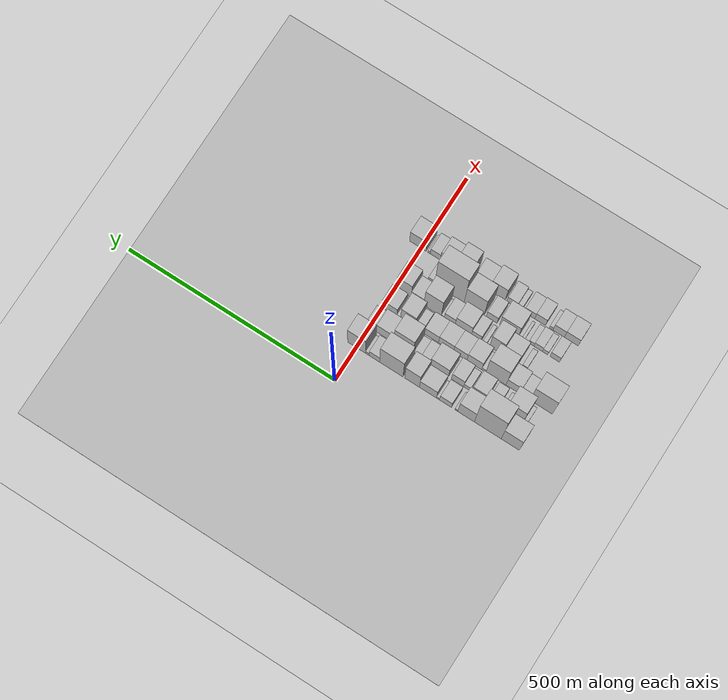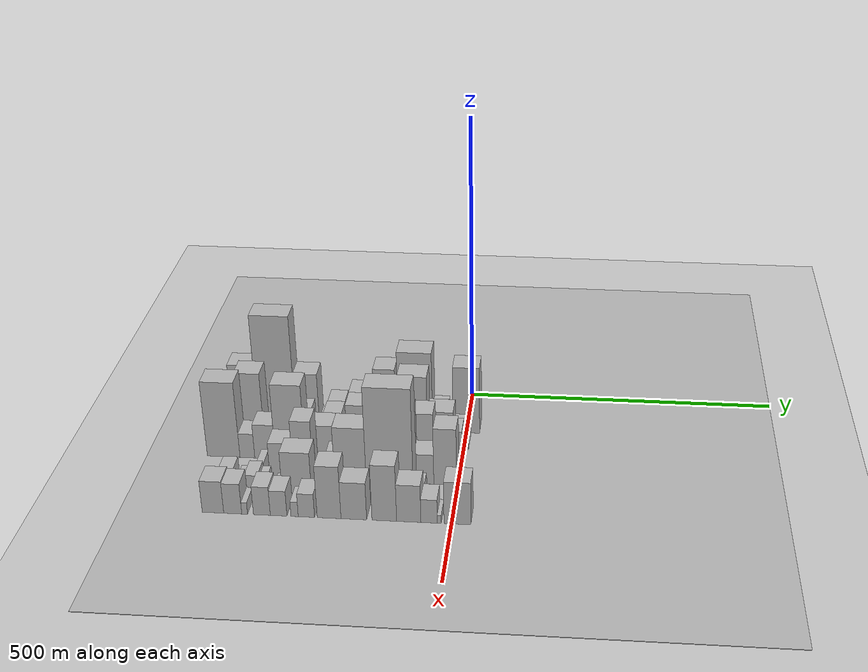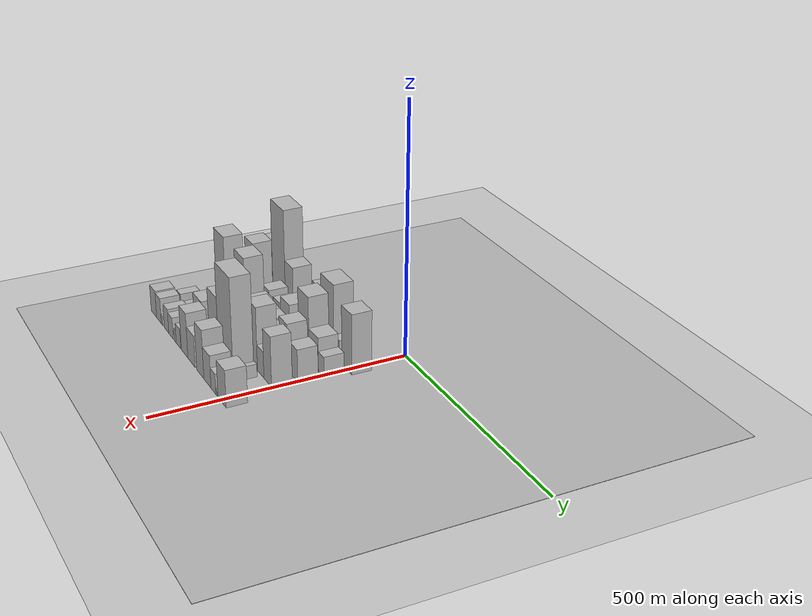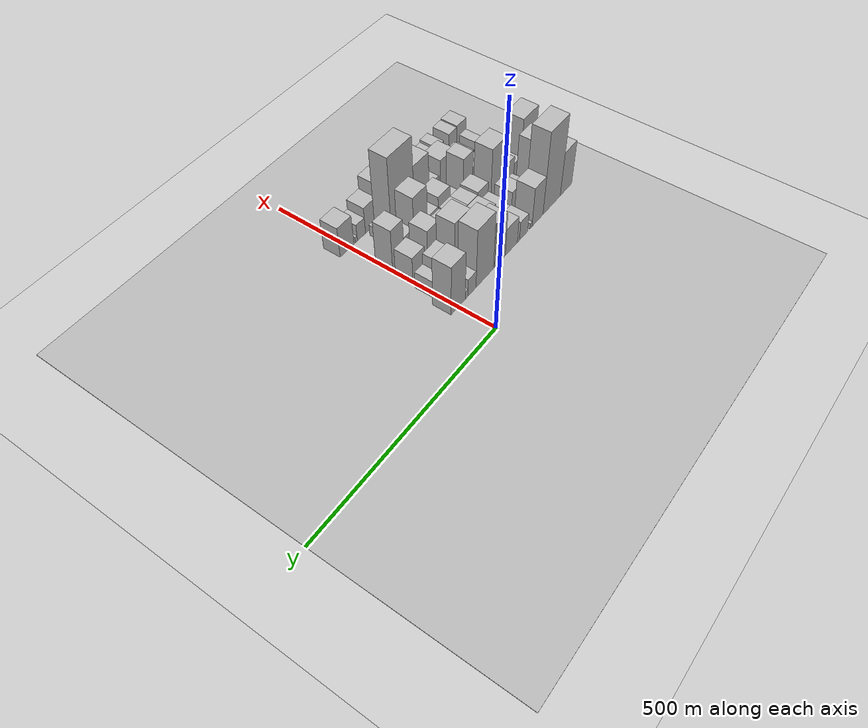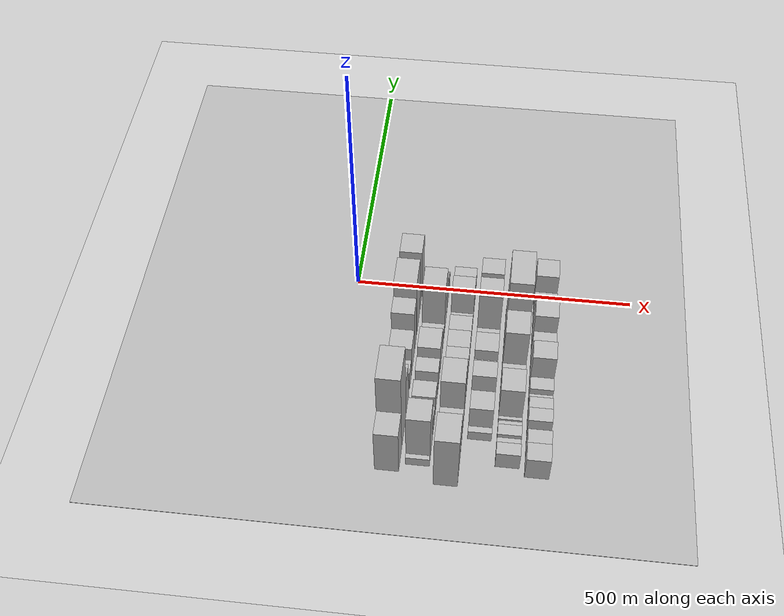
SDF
<sdf version="1.6">
 <world name="default">
  <include><name>ground_plane_1</name><uri>model://HANNAS_ground_plane</uri></include>
  <include>
   <name>ground_plane_2</name>
   <uri>model://HANNAS_ground_plane</uri>
   <pose>100 0 0  0 0 0</pose>
  </include>
  <model name="building_13">
   <static>1</static>
   <pose>100.0000 -365.4669 0 0.000000 0.000000 0.000000</pose>
   <link name="link">
    <pose>0 0 55.50 0 0 0</pose>
    <collision name="collision"><geometry><box><size>40.0000 43.0348 111.0000</size></box></geometry></collision>
    <visual name="visual">
     <cast_shadows>0</cast_shadows>
     <geometry><box><size>40.0000 43.0348 111.0000</size></box></geometry>
     <material>
      <script>
       <uri>model://HANNAS_wall/materials/scripts</uri>
       <uri>model://HANNAS_wall/materials/textures</uri>
       <name>vrc/HANNAS_wall</name>
      </script>
     </material>
    </visual>
   </link>
  </model>
  <model name="building_14">
   <static>1</static>
   <pose>100.0000 -312.3354 0 0.000000 0.000000 0.000000</pose>
   <link name="link">
    <pose>0 0 102.00 0 0 0</pose>
    <collision name="collision"><geometry><box><size>40.0000 63.2282 204.0000</size></box></geometry></collision>
    <visual name="visual">
     <cast_shadows>0</cast_shadows>
     <geometry><box><size>40.0000 63.2282 204.0000</size></box></geometry>
     <material>
      <script>
       <uri>model://HANNAS_wall/materials/scripts</uri>
       <uri>model://HANNAS_wall/materials/textures</uri>
       <name>vrc/HANNAS_wall</name>
      </script>
     </material>
    </visual>
   </link>
  </model>
  <model name="building_15">
   <static>1</static>
   <pose>100.0000 -261.1318 0 0.000000 0.000000 0.000000</pose>
   <link name="link">
    <pose>0 0 49.50 0 0 0</pose>
    <collision name="collision"><geometry><box><size>40.0000 39.1790 99.0000</size></box></geometry></collision>
    <visual name="visual">
     <cast_shadows>0</cast_shadows>
     <geometry><box><size>40.0000 39.1790 99.0000</size></box></geometry>
     <material>
      <script>
       <uri>model://HANNAS_wall/materials/scripts</uri>
       <uri>model://HANNAS_wall/materials/textures</uri>
       <name>vrc/HANNAS_wall</name>
      </script>
     </material>
    </visual>
   </link>
  </model>
  <model name="building_16">
   <static>1</static>
   <pose>100.0000 -238.0258 0 0.000000 0.000000 0.000000</pose>
   <link name="link">
    <pose>0 0 7.50 0 0 0</pose>
    <collision name="collision"><geometry><box><size>40.0000 7.0330 15.0000</size></box></geometry></collision>
    <visual name="visual">
     <cast_shadows>0</cast_shadows>
     <geometry><box><size>40.0000 7.0330 15.0000</size></box></geometry>
     <material>
      <script>
       <uri>model://HANNAS_wall/materials/scripts</uri>
       <uri>model://HANNAS_wall/materials/textures</uri>
       <name>vrc/HANNAS_wall</name>
      </script>
     </material>
    </visual>
   </link>
  </model>
  <model name="building_17">
   <static>1</static>
   <pose>100.0000 -212.2948 0 0.000000 0.000000 0.000000</pose>
   <link name="link">
    <pose>0 0 24.00 0 0 0</pose>
    <collision name="collision"><geometry><box><size>40.0000 28.4289 48.0000</size></box></geometry></collision>
    <visual name="visual">
     <cast_shadows>0</cast_shadows>
     <geometry><box><size>40.0000 28.4289 48.0000</size></box></geometry>
     <material>
      <script>
       <uri>model://HANNAS_wall/materials/scripts</uri>
       <uri>model://HANNAS_wall/materials/textures</uri>
       <name>vrc/HANNAS_wall</name>
      </script>
     </material>
    </visual>
   </link>
  </model>
  <model name="building_18">
   <static>1</static>
   <pose>100.0000 -194.4038 0 0.000000 0.000000 0.000000</pose>
   <link name="link">
    <pose>0 0 7.50 0 0 0</pose>
    <collision name="collision"><geometry><box><size>40.0000 7.3532 15.0000</size></box></geometry></collision>
    <visual name="visual">
     <cast_shadows>0</cast_shadows>
     <geometry><box><size>40.0000 7.3532 15.0000</size></box></geometry>
     <material>
      <script>
       <uri>model://HANNAS_wall/materials/scripts</uri>
       <uri>model://HANNAS_wall/materials/textures</uri>
       <name>vrc/HANNAS_wall</name>
      </script>
     </material>
    </visual>
   </link>
  </model>
  <model name="building_19">
   <static>1</static>
   <pose>100.0000 -170.3524 0 0.000000 0.000000 0.000000</pose>
   <link name="link">
    <pose>0 0 34.50 0 0 0</pose>
    <collision name="collision"><geometry><box><size>40.0000 40.7496 69.0000</size></box></geometry></collision>
    <visual name="visual">
     <cast_shadows>0</cast_shadows>
     <geometry><box><size>40.0000 40.7496 69.0000</size></box></geometry>
     <material>
      <script>
       <uri>model://HANNAS_wall/materials/scripts</uri>
       <uri>model://HANNAS_wall/materials/textures</uri>
       <name>vrc/HANNAS_wall</name>
      </script>
     </material>
    </visual>
   </link>
  </model>
  <model name="building_20">
   <static>1</static>
   <pose>100.0000 -132.4593 0 0.000000 0.000000 0.000000</pose>
   <link name="link">
    <pose>0 0 57.00 0 0 0</pose>
    <collision name="collision"><geometry><box><size>40.0000 35.0364 114.0000</size></box></geometry></collision>
    <visual name="visual">
     <cast_shadows>0</cast_shadows>
     <geometry><box><size>40.0000 35.0364 114.0000</size></box></geometry>
     <material>
      <script>
       <uri>model://HANNAS_wall/materials/scripts</uri>
       <uri>model://HANNAS_wall/materials/textures</uri>
       <name>vrc/HANNAS_wall</name>
      </script>
     </material>
    </visual>
   </link>
  </model>
  <model name="building_21">
   <static>1</static>
   <pose>100.0000 -83.0695 0 0.000000 0.000000 0.000000</pose>
   <link name="link">
    <pose>0 0 73.50 0 0 0</pose>
    <collision name="collision"><geometry><box><size>40.0000 55.7433 147.0000</size></box></geometry></collision>
    <visual name="visual">
     <cast_shadows>0</cast_shadows>
     <geometry><box><size>40.0000 55.7433 147.0000</size></box></geometry>
     <material>
      <script>
       <uri>model://HANNAS_wall/materials/scripts</uri>
       <uri>model://HANNAS_wall/materials/textures</uri>
       <name>vrc/HANNAS_wall</name>
      </script>
     </material>
    </visual>
   </link>
  </model>
  <model name="building_22">
   <static>1</static>
   <pose>100.0000 -42.6258 0 0.000000 0.000000 0.000000</pose>
   <link name="link">
    <pose>0 0 22.50 0 0 0</pose>
    <collision name="collision"><geometry><box><size>40.0000 25.1440 45.0000</size></box></geometry></collision>
    <visual name="visual">
     <cast_shadows>0</cast_shadows>
     <geometry><box><size>40.0000 25.1440 45.0000</size></box></geometry>
     <material>
      <script>
       <uri>model://HANNAS_wall/materials/scripts</uri>
       <uri>model://HANNAS_wall/materials/textures</uri>
       <name>vrc/HANNAS_wall</name>
      </script>
     </material>
    </visual>
   </link>
  </model>
  <model name="building_23">
   <static>1</static>
   <pose>100.0000 -25.8281 0 0.000000 0.000000 0.000000</pose>
   <link name="link">
    <pose>0 0 10.50 0 0 0</pose>
    <collision name="collision"><geometry><box><size>40.0000 8.4514 21.0000</size></box></geometry></collision>
    <visual name="visual">
     <cast_shadows>0</cast_shadows>
     <geometry><box><size>40.0000 8.4514 21.0000</size></box></geometry>
     <material>
      <script>
       <uri>model://HANNAS_wall/materials/scripts</uri>
       <uri>model://HANNAS_wall/materials/textures</uri>
       <name>vrc/HANNAS_wall</name>
      </script>
     </material>
    </visual>
   </link>
  </model>
  <model name="building_24">
   <static>1</static>
   <pose>100.0000 -0.0143 0 0.000000 0.000000 0.000000</pose>
   <link name="link">
    <pose>0 0 61.50 0 0 0</pose>
    <collision name="collision"><geometry><box><size>40.0000 43.1762 123.0000</size></box></geometry></collision>
    <visual name="visual">
     <cast_shadows>0</cast_shadows>
     <geometry><box><size>40.0000 43.1762 123.0000</size></box></geometry>
     <material>
      <script>
       <uri>model://HANNAS_wall/materials/scripts</uri>
       <uri>model://HANNAS_wall/materials/textures</uri>
       <name>vrc/HANNAS_wall</name>
      </script>
     </material>
    </visual>
   </link>
  </model>
  <model name="building_61">
   <static>1</static>
   <pose>149.0000 -367.9124 0 0.000000 0.000000 0.000000</pose>
   <link name="link">
    <pose>0 0 10.50 0 0 0</pose>
    <collision name="collision"><geometry><box><size>40.0000 8.4608 21.0000</size></box></geometry></collision>
    <visual name="visual">
     <cast_shadows>0</cast_shadows>
     <geometry><box><size>40.0000 8.4608 21.0000</size></box></geometry>
     <material>
      <script>
       <uri>model://HANNAS_wall/materials/scripts</uri>
       <uri>model://HANNAS_wall/materials/textures</uri>
       <name>vrc/HANNAS_wall</name>
      </script>
     </material>
    </visual>
   </link>
  </model>
  <model name="building_62">
   <static>1</static>
   <pose>149.0000 -343.1044 0 0.000000 0.000000 0.000000</pose>
   <link name="link">
    <pose>0 0 63.00 0 0 0</pose>
    <collision name="collision"><geometry><box><size>40.0000 41.1552 126.0000</size></box></geometry></collision>
    <visual name="visual">
     <cast_shadows>0</cast_shadows>
     <geometry><box><size>40.0000 41.1552 126.0000</size></box></geometry>
     <material>
      <script>
       <uri>model://HANNAS_wall/materials/scripts</uri>
       <uri>model://HANNAS_wall/materials/textures</uri>
       <name>vrc/HANNAS_wall</name>
      </script>
     </material>
    </visual>
   </link>
  </model>
  <model name="building_63">
   <static>1</static>
   <pose>149.0000 -318.1681 0 0.000000 0.000000 0.000000</pose>
   <link name="link">
    <pose>0 0 10.50 0 0 0</pose>
    <collision name="collision"><geometry><box><size>40.0000 8.7174 21.0000</size></box></geometry></collision>
    <visual name="visual">
     <cast_shadows>0</cast_shadows>
     <geometry><box><size>40.0000 8.7174 21.0000</size></box></geometry>
     <material>
      <script>
       <uri>model://HANNAS_wall/materials/scripts</uri>
       <uri>model://HANNAS_wall/materials/textures</uri>
       <name>vrc/HANNAS_wall</name>
      </script>
     </material>
    </visual>
   </link>
  </model>
  <model name="building_64">
   <static>1</static>
   <pose>149.0000 -293.9728 0 0.000000 0.000000 0.000000</pose>
   <link name="link">
    <pose>0 0 21.00 0 0 0</pose>
    <collision name="collision"><geometry><box><size>40.0000 23.6732 42.0000</size></box></geometry></collision>
    <visual name="visual">
     <cast_shadows>0</cast_shadows>
     <geometry><box><size>40.0000 23.6732 42.0000</size></box></geometry>
     <material>
      <script>
       <uri>model://HANNAS_wall/materials/scripts</uri>
       <uri>model://HANNAS_wall/materials/textures</uri>
       <name>vrc/HANNAS_wall</name>
      </script>
     </material>
    </visual>
   </link>
  </model>
  <model name="building_65">
   <static>1</static>
   <pose>149.0000 -260.7673 0 0.000000 0.000000 0.000000</pose>
   <link name="link">
    <pose>0 0 30.00 0 0 0</pose>
    <collision name="collision"><geometry><box><size>40.0000 32.7379 60.0000</size></box></geometry></collision>
    <visual name="visual">
     <cast_shadows>0</cast_shadows>
     <geometry><box><size>40.0000 32.7379 60.0000</size></box></geometry>
     <material>
      <script>
       <uri>model://HANNAS_wall/materials/scripts</uri>
       <uri>model://HANNAS_wall/materials/textures</uri>
       <name>vrc/HANNAS_wall</name>
      </script>
     </material>
    </visual>
   </link>
  </model>
  <model name="building_66">
   <static>1</static>
   <pose>149.0000 -232.5205 0 0.000000 0.000000 0.000000</pose>
   <link name="link">
    <pose>0 0 15.00 0 0 0</pose>
    <collision name="collision"><geometry><box><size>40.0000 15.7556 30.0000</size></box></geometry></collision>
    <visual name="visual">
     <cast_shadows>0</cast_shadows>
     <geometry><box><size>40.0000 15.7556 30.0000</size></box></geometry>
     <material>
      <script>
       <uri>model://HANNAS_wall/materials/scripts</uri>
       <uri>model://HANNAS_wall/materials/textures</uri>
       <name>vrc/HANNAS_wall</name>
      </script>
     </material>
    </visual>
   </link>
  </model>
  <model name="building_67">
   <static>1</static>
   <pose>149.0000 -209.9047 0 0.000000 0.000000 0.000000</pose>
   <link name="link">
    <pose>0 0 28.50 0 0 0</pose>
    <collision name="collision"><geometry><box><size>40.0000 29.4762 57.0000</size></box></geometry></collision>
    <visual name="visual">
     <cast_shadows>0</cast_shadows>
     <geometry><box><size>40.0000 29.4762 57.0000</size></box></geometry>
     <material>
      <script>
       <uri>model://HANNAS_wall/materials/scripts</uri>
       <uri>model://HANNAS_wall/materials/textures</uri>
       <name>vrc/HANNAS_wall</name>
      </script>
     </material>
    </visual>
   </link>
  </model>
  <model name="building_68">
   <static>1</static>
   <pose>149.0000 -166.5768 0 0.000000 0.000000 0.000000</pose>
   <link name="link">
    <pose>0 0 37.50 0 0 0</pose>
    <collision name="collision"><geometry><box><size>40.0000 43.1795 75.0000</size></box></geometry></collision>
    <visual name="visual">
     <cast_shadows>0</cast_shadows>
     <geometry><box><size>40.0000 43.1795 75.0000</size></box></geometry>
     <material>
      <script>
       <uri>model://HANNAS_wall/materials/scripts</uri>
       <uri>model://HANNAS_wall/materials/textures</uri>
       <name>vrc/HANNAS_wall</name>
      </script>
     </material>
    </visual>
   </link>
  </model>
  <model name="building_69">
   <static>1</static>
   <pose>149.0000 -133.6588 0 0.000000 0.000000 0.000000</pose>
   <link name="link">
    <pose>0 0 21.00 0 0 0</pose>
    <collision name="collision"><geometry><box><size>40.0000 22.6566 42.0000</size></box></geometry></collision>
    <visual name="visual">
     <cast_shadows>0</cast_shadows>
     <geometry><box><size>40.0000 22.6566 42.0000</size></box></geometry>
     <material>
      <script>
       <uri>model://HANNAS_wall/materials/scripts</uri>
       <uri>model://HANNAS_wall/materials/textures</uri>
       <name>vrc/HANNAS_wall</name>
      </script>
     </material>
    </visual>
   </link>
  </model>
  <model name="building_70">
   <static>1</static>
   <pose>149.0000 -113.3416 0 0.000000 0.000000 0.000000</pose>
   <link name="link">
    <pose>0 0 16.50 0 0 0</pose>
    <collision name="collision"><geometry><box><size>40.0000 17.9777 33.0000</size></box></geometry></collision>
    <visual name="visual">
     <cast_shadows>0</cast_shadows>
     <geometry><box><size>40.0000 17.9777 33.0000</size></box></geometry>
     <material>
      <script>
       <uri>model://HANNAS_wall/materials/scripts</uri>
       <uri>model://HANNAS_wall/materials/textures</uri>
       <name>vrc/HANNAS_wall</name>
      </script>
     </material>
    </visual>
   </link>
  </model>
  <model name="building_71">
   <static>1</static>
   <pose>149.0000 -80.9436 0 0.000000 0.000000 0.000000</pose>
   <link name="link">
    <pose>0 0 66.00 0 0 0</pose>
    <collision name="collision"><geometry><box><size>40.0000 46.8184 132.0000</size></box></geometry></collision>
    <visual name="visual">
     <cast_shadows>0</cast_shadows>
     <geometry><box><size>40.0000 46.8184 132.0000</size></box></geometry>
     <material>
      <script>
       <uri>model://HANNAS_wall/materials/scripts</uri>
       <uri>model://HANNAS_wall/materials/textures</uri>
       <name>vrc/HANNAS_wall</name>
      </script>
     </material>
    </visual>
   </link>
  </model>
  <model name="building_72">
   <static>1</static>
   <pose>149.0000 -36.9396 0 0.000000 0.000000 0.000000</pose>
   <link name="link">
    <pose>0 0 34.50 0 0 0</pose>
    <collision name="collision"><geometry><box><size>40.0000 41.1896 69.0000</size></box></geometry></collision>
    <visual name="visual">
     <cast_shadows>0</cast_shadows>
     <geometry><box><size>40.0000 41.1896 69.0000</size></box></geometry>
     <material>
      <script>
       <uri>model://HANNAS_wall/materials/scripts</uri>
       <uri>model://HANNAS_wall/materials/textures</uri>
       <name>vrc/HANNAS_wall</name>
      </script>
     </material>
    </visual>
   </link>
  </model>
  <model name="building_73">
   <static>1</static>
   <pose>149.0000 -4.1953 0 0.000000 0.000000 0.000000</pose>
   <link name="link">
    <pose>0 0 21.00 0 0 0</pose>
    <collision name="collision"><geometry><box><size>40.0000 24.2990 42.0000</size></box></geometry></collision>
    <visual name="visual">
     <cast_shadows>0</cast_shadows>
     <geometry><box><size>40.0000 24.2990 42.0000</size></box></geometry>
     <material>
      <script>
       <uri>model://HANNAS_wall/materials/scripts</uri>
       <uri>model://HANNAS_wall/materials/textures</uri>
       <name>vrc/HANNAS_wall</name>
      </script>
     </material>
    </visual>
   </link>
  </model>
  <model name="building_114">
   <static>1</static>
   <pose>198.0000 -377.8753 0 0.000000 0.000000 0.000000</pose>
   <link name="link">
    <pose>0 0 69.00 0 0 0</pose>
    <collision name="collision"><geometry><box><size>40.0000 52.5424 138.0000</size></box></geometry></collision>
    <visual name="visual">
     <cast_shadows>0</cast_shadows>
     <geometry><box><size>40.0000 52.5424 138.0000</size></box></geometry>
     <material>
      <script>
       <uri>model://HANNAS_wall/materials/scripts</uri>
       <uri>model://HANNAS_wall/materials/textures</uri>
       <name>vrc/HANNAS_wall</name>
      </script>
     </material>
    </visual>
   </link>
  </model>
  <model name="building_115">
   <static>1</static>
   <pose>198.0000 -339.6867 0 0.000000 0.000000 0.000000</pose>
   <link name="link">
    <pose>0 0 22.50 0 0 0</pose>
    <collision name="collision"><geometry><box><size>40.0000 23.8348 45.0000</size></box></geometry></collision>
    <visual name="visual">
     <cast_shadows>0</cast_shadows>
     <geometry><box><size>40.0000 23.8348 45.0000</size></box></geometry>
     <material>
      <script>
       <uri>model://HANNAS_wall/materials/scripts</uri>
       <uri>model://HANNAS_wall/materials/textures</uri>
       <name>vrc/HANNAS_wall</name>
      </script>
     </material>
    </visual>
   </link>
  </model>
  <model name="building_116">
   <static>1</static>
   <pose>198.0000 -311.1882 0 0.000000 0.000000 0.000000</pose>
   <link name="link">
    <pose>0 0 31.50 0 0 0</pose>
    <collision name="collision"><geometry><box><size>40.0000 33.1622 63.0000</size></box></geometry></collision>
    <visual name="visual">
     <cast_shadows>0</cast_shadows>
     <geometry><box><size>40.0000 33.1622 63.0000</size></box></geometry>
     <material>
      <script>
       <uri>model://HANNAS_wall/materials/scripts</uri>
       <uri>model://HANNAS_wall/materials/textures</uri>
       <name>vrc/HANNAS_wall</name>
      </script>
     </material>
    </visual>
   </link>
  </model>
  <model name="building_117">
   <static>1</static>
   <pose>198.0000 -270.6538 0 0.000000 0.000000 0.000000</pose>
   <link name="link">
    <pose>0 0 69.00 0 0 0</pose>
    <collision name="collision"><geometry><box><size>40.0000 47.9067 138.0000</size></box></geometry></collision>
    <visual name="visual">
     <cast_shadows>0</cast_shadows>
     <geometry><box><size>40.0000 47.9067 138.0000</size></box></geometry>
     <material>
      <script>
       <uri>model://HANNAS_wall/materials/scripts</uri>
       <uri>model://HANNAS_wall/materials/textures</uri>
       <name>vrc/HANNAS_wall</name>
      </script>
     </material>
    </visual>
   </link>
  </model>
  <model name="building_118">
   <static>1</static>
   <pose>198.0000 -241.7246 0 0.000000 0.000000 0.000000</pose>
   <link name="link">
    <pose>0 0 10.50 0 0 0</pose>
    <collision name="collision"><geometry><box><size>40.0000 9.9516 21.0000</size></box></geometry></collision>
    <visual name="visual">
     <cast_shadows>0</cast_shadows>
     <geometry><box><size>40.0000 9.9516 21.0000</size></box></geometry>
     <material>
      <script>
       <uri>model://HANNAS_wall/materials/scripts</uri>
       <uri>model://HANNAS_wall/materials/textures</uri>
       <name>vrc/HANNAS_wall</name>
      </script>
     </material>
    </visual>
   </link>
  </model>
  <model name="building_119">
   <static>1</static>
   <pose>198.0000 -219.0642 0 0.000000 0.000000 0.000000</pose>
   <link name="link">
    <pose>0 0 33.00 0 0 0</pose>
    <collision name="collision"><geometry><box><size>40.0000 35.3692 66.0000</size></box></geometry></collision>
    <visual name="visual">
     <cast_shadows>0</cast_shadows>
     <geometry><box><size>40.0000 35.3692 66.0000</size></box></geometry>
     <material>
      <script>
       <uri>model://HANNAS_wall/materials/scripts</uri>
       <uri>model://HANNAS_wall/materials/textures</uri>
       <name>vrc/HANNAS_wall</name>
      </script>
     </material>
    </visual>
   </link>
  </model>
  <model name="building_120">
   <static>1</static>
   <pose>198.0000 -185.4843 0 0.000000 0.000000 0.000000</pose>
   <link name="link">
    <pose>0 0 30.00 0 0 0</pose>
    <collision name="collision"><geometry><box><size>40.0000 31.7907 60.0000</size></box></geometry></collision>
    <visual name="visual">
     <cast_shadows>0</cast_shadows>
     <geometry><box><size>40.0000 31.7907 60.0000</size></box></geometry>
     <material>
      <script>
       <uri>model://HANNAS_wall/materials/scripts</uri>
       <uri>model://HANNAS_wall/materials/textures</uri>
       <name>vrc/HANNAS_wall</name>
      </script>
     </material>
    </visual>
   </link>
  </model>
  <model name="building_121">
   <static>1</static>
   <pose>198.0000 -151.6991 0 0.000000 0.000000 0.000000</pose>
   <link name="link">
    <pose>0 0 30.00 0 0 0</pose>
    <collision name="collision"><geometry><box><size>40.0000 35.7798 60.0000</size></box></geometry></collision>
    <visual name="visual">
     <cast_shadows>0</cast_shadows>
     <geometry><box><size>40.0000 35.7798 60.0000</size></box></geometry>
     <material>
      <script>
       <uri>model://HANNAS_wall/materials/scripts</uri>
       <uri>model://HANNAS_wall/materials/textures</uri>
       <name>vrc/HANNAS_wall</name>
      </script>
     </material>
    </visual>
   </link>
  </model>
  <model name="building_122">
   <static>1</static>
   <pose>198.0000 -116.7646 0 0.000000 0.000000 0.000000</pose>
   <link name="link">
    <pose>0 0 28.50 0 0 0</pose>
    <collision name="collision"><geometry><box><size>40.0000 34.0891 57.0000</size></box></geometry></collision>
    <visual name="visual">
     <cast_shadows>0</cast_shadows>
     <geometry><box><size>40.0000 34.0891 57.0000</size></box></geometry>
     <material>
      <script>
       <uri>model://HANNAS_wall/materials/scripts</uri>
       <uri>model://HANNAS_wall/materials/textures</uri>
       <name>vrc/HANNAS_wall</name>
      </script>
     </material>
    </visual>
   </link>
  </model>
  <model name="building_123">
   <static>1</static>
   <pose>198.0000 -87.5846 0 0.000000 0.000000 0.000000</pose>
   <link name="link">
    <pose>0 0 18.00 0 0 0</pose>
    <collision name="collision"><geometry><box><size>40.0000 18.2708 36.0000</size></box></geometry></collision>
    <visual name="visual">
     <cast_shadows>0</cast_shadows>
     <geometry><box><size>40.0000 18.2708 36.0000</size></box></geometry>
     <material>
      <script>
       <uri>model://HANNAS_wall/materials/scripts</uri>
       <uri>model://HANNAS_wall/materials/textures</uri>
       <name>vrc/HANNAS_wall</name>
      </script>
     </material>
    </visual>
   </link>
  </model>
  <model name="building_124">
   <static>1</static>
   <pose>198.0000 -60.5852 0 0.000000 0.000000 0.000000</pose>
   <link name="link">
    <pose>0 0 48.00 0 0 0</pose>
    <collision name="collision"><geometry><box><size>40.0000 35.7281 96.0000</size></box></geometry></collision>
    <visual name="visual">
     <cast_shadows>0</cast_shadows>
     <geometry><box><size>40.0000 35.7281 96.0000</size></box></geometry>
     <material>
      <script>
       <uri>model://HANNAS_wall/materials/scripts</uri>
       <uri>model://HANNAS_wall/materials/textures</uri>
       <name>vrc/HANNAS_wall</name>
      </script>
     </material>
    </visual>
   </link>
  </model>
  <model name="building_125">
   <static>1</static>
   <pose>198.0000 -38.4092 0 0.000000 0.000000 0.000000</pose>
   <link name="link">
    <pose>0 0 10.50 0 0 0</pose>
    <collision name="collision"><geometry><box><size>40.0000 8.6239 21.0000</size></box></geometry></collision>
    <visual name="visual">
     <cast_shadows>0</cast_shadows>
     <geometry><box><size>40.0000 8.6239 21.0000</size></box></geometry>
     <material>
      <script>
       <uri>model://HANNAS_wall/materials/scripts</uri>
       <uri>model://HANNAS_wall/materials/textures</uri>
       <name>vrc/HANNAS_wall</name>
      </script>
     </material>
    </visual>
   </link>
  </model>
  <model name="building_126">
   <static>1</static>
   <pose>198.0000 -16.0015 0 0.000000 0.000000 0.000000</pose>
   <link name="link">
    <pose>0 0 33.00 0 0 0</pose>
    <collision name="collision"><geometry><box><size>40.0000 36.1915 66.0000</size></box></geometry></collision>
    <visual name="visual">
     <cast_shadows>0</cast_shadows>
     <geometry><box><size>40.0000 36.1915 66.0000</size></box></geometry>
     <material>
      <script>
       <uri>model://HANNAS_wall/materials/scripts</uri>
       <uri>model://HANNAS_wall/materials/textures</uri>
       <name>vrc/HANNAS_wall</name>
      </script>
     </material>
    </visual>
   </link>
  </model>
  <model name="building_163">
   <static>1</static>
   <pose>247.0000 -307.6725 0 0.000000 0.000000 0.000000</pose>
   <link name="link">
    <pose>0 0 12.00 0 0 0</pose>
    <collision name="collision"><geometry><box><size>40.0000 11.4859 24.0000</size></box></geometry></collision>
    <visual name="visual">
     <cast_shadows>0</cast_shadows>
     <geometry><box><size>40.0000 11.4859 24.0000</size></box></geometry>
     <material>
      <script>
       <uri>model://HANNAS_wall/materials/scripts</uri>
       <uri>model://HANNAS_wall/materials/textures</uri>
       <name>vrc/HANNAS_wall</name>
      </script>
     </material>
    </visual>
   </link>
  </model>
  <model name="building_164">
   <static>1</static>
   <pose>247.0000 -274.5075 0 0.000000 0.000000 0.000000</pose>
   <link name="link">
    <pose>0 0 31.50 0 0 0</pose>
    <collision name="collision"><geometry><box><size>40.0000 36.8439 63.0000</size></box></geometry></collision>
    <visual name="visual">
     <cast_shadows>0</cast_shadows>
     <geometry><box><size>40.0000 36.8439 63.0000</size></box></geometry>
     <material>
      <script>
       <uri>model://HANNAS_wall/materials/scripts</uri>
       <uri>model://HANNAS_wall/materials/textures</uri>
       <name>vrc/HANNAS_wall</name>
      </script>
     </material>
    </visual>
   </link>
  </model>
  <model name="building_165">
   <static>1</static>
   <pose>247.0000 -240.2928 0 0.000000 0.000000 0.000000</pose>
   <link name="link">
    <pose>0 0 52.50 0 0 0</pose>
    <collision name="collision"><geometry><box><size>40.0000 31.5854 105.0000</size></box></geometry></collision>
    <visual name="visual">
     <cast_shadows>0</cast_shadows>
     <geometry><box><size>40.0000 31.5854 105.0000</size></box></geometry>
     <material>
      <script>
       <uri>model://HANNAS_wall/materials/scripts</uri>
       <uri>model://HANNAS_wall/materials/textures</uri>
       <name>vrc/HANNAS_wall</name>
      </script>
     </material>
    </visual>
   </link>
  </model>
  <model name="building_166">
   <static>1</static>
   <pose>247.0000 -213.0566 0 0.000000 0.000000 0.000000</pose>
   <link name="link">
    <pose>0 0 9.00 0 0 0</pose>
    <collision name="collision"><geometry><box><size>40.0000 8.8870 18.0000</size></box></geometry></collision>
    <visual name="visual">
     <cast_shadows>0</cast_shadows>
     <geometry><box><size>40.0000 8.8870 18.0000</size></box></geometry>
     <material>
      <script>
       <uri>model://HANNAS_wall/materials/scripts</uri>
       <uri>model://HANNAS_wall/materials/textures</uri>
       <name>vrc/HANNAS_wall</name>
      </script>
     </material>
    </visual>
   </link>
  </model>
  <model name="building_167">
   <static>1</static>
   <pose>247.0000 -193.0090 0 0.000000 0.000000 0.000000</pose>
   <link name="link">
    <pose>0 0 22.50 0 0 0</pose>
    <collision name="collision"><geometry><box><size>40.0000 23.2081 45.0000</size></box></geometry></collision>
    <visual name="visual">
     <cast_shadows>0</cast_shadows>
     <geometry><box><size>40.0000 23.2081 45.0000</size></box></geometry>
     <material>
      <script>
       <uri>model://HANNAS_wall/materials/scripts</uri>
       <uri>model://HANNAS_wall/materials/textures</uri>
       <name>vrc/HANNAS_wall</name>
      </script>
     </material>
    </visual>
   </link>
  </model>
  <model name="building_168">
   <static>1</static>
   <pose>247.0000 -162.0432 0 0.000000 0.000000 0.000000</pose>
   <link name="link">
    <pose>0 0 36.00 0 0 0</pose>
    <collision name="collision"><geometry><box><size>40.0000 38.7234 72.0000</size></box></geometry></collision>
    <visual name="visual">
     <cast_shadows>0</cast_shadows>
     <geometry><box><size>40.0000 38.7234 72.0000</size></box></geometry>
     <material>
      <script>
       <uri>model://HANNAS_wall/materials/scripts</uri>
       <uri>model://HANNAS_wall/materials/textures</uri>
       <name>vrc/HANNAS_wall</name>
      </script>
     </material>
    </visual>
   </link>
  </model>
  <model name="building_169">
   <static>1</static>
   <pose>247.0000 -129.5253 0 0.000000 0.000000 0.000000</pose>
   <link name="link">
    <pose>0 0 24.00 0 0 0</pose>
    <collision name="collision"><geometry><box><size>40.0000 26.3125 48.0000</size></box></geometry></collision>
    <visual name="visual">
     <cast_shadows>0</cast_shadows>
     <geometry><box><size>40.0000 26.3125 48.0000</size></box></geometry>
     <material>
      <script>
       <uri>model://HANNAS_wall/materials/scripts</uri>
       <uri>model://HANNAS_wall/materials/textures</uri>
       <name>vrc/HANNAS_wall</name>
      </script>
     </material>
    </visual>
   </link>
  </model>
  <model name="building_170">
   <static>1</static>
   <pose>247.0000 -112.8049 0 0.000000 0.000000 0.000000</pose>
   <link name="link">
    <pose>0 0 7.50 0 0 0</pose>
    <collision name="collision"><geometry><box><size>40.0000 7.1283 15.0000</size></box></geometry></collision>
    <visual name="visual">
     <cast_shadows>0</cast_shadows>
     <geometry><box><size>40.0000 7.1283 15.0000</size></box></geometry>
     <material>
      <script>
       <uri>model://HANNAS_wall/materials/scripts</uri>
       <uri>model://HANNAS_wall/materials/textures</uri>
       <name>vrc/HANNAS_wall</name>
      </script>
     </material>
    </visual>
   </link>
  </model>
  <model name="building_171">
   <static>1</static>
   <pose>247.0000 -88.2982 0 0.000000 0.000000 0.000000</pose>
   <link name="link">
    <pose>0 0 64.50 0 0 0</pose>
    <collision name="collision"><geometry><box><size>40.0000 41.8850 129.0000</size></box></geometry></collision>
    <visual name="visual">
     <cast_shadows>0</cast_shadows>
     <geometry><box><size>40.0000 41.8850 129.0000</size></box></geometry>
     <material>
      <script>
       <uri>model://HANNAS_wall/materials/scripts</uri>
       <uri>model://HANNAS_wall/materials/textures</uri>
       <name>vrc/HANNAS_wall</name>
      </script>
     </material>
    </visual>
   </link>
  </model>
  <model name="building_172">
   <static>1</static>
   <pose>247.0000 -52.1585 0 0.000000 0.000000 0.000000</pose>
   <link name="link">
    <pose>0 0 27.00 0 0 0</pose>
    <collision name="collision"><geometry><box><size>40.0000 30.3944 54.0000</size></box></geometry></collision>
    <visual name="visual">
     <cast_shadows>0</cast_shadows>
     <geometry><box><size>40.0000 30.3944 54.0000</size></box></geometry>
     <material>
      <script>
       <uri>model://HANNAS_wall/materials/scripts</uri>
       <uri>model://HANNAS_wall/materials/textures</uri>
       <name>vrc/HANNAS_wall</name>
      </script>
     </material>
    </visual>
   </link>
  </model>
  <model name="building_173">
   <static>1</static>
   <pose>247.0000 -19.3755 0 0.000000 0.000000 0.000000</pose>
   <link name="link">
    <pose>0 0 51.00 0 0 0</pose>
    <collision name="collision"><geometry><box><size>40.0000 35.1717 102.0000</size></box></geometry></collision>
    <visual name="visual">
     <cast_shadows>0</cast_shadows>
     <geometry><box><size>40.0000 35.1717 102.0000</size></box></geometry>
     <material>
      <script>
       <uri>model://HANNAS_wall/materials/scripts</uri>
       <uri>model://HANNAS_wall/materials/textures</uri>
       <name>vrc/HANNAS_wall</name>
      </script>
     </material>
    </visual>
   </link>
  </model>
  <model name="building_208">
   <static>1</static>
   <pose>296.0000 -349.2092 0 0.000000 0.000000 0.000000</pose>
   <link name="link">
    <pose>0 0 21.00 0 0 0</pose>
    <collision name="collision"><geometry><box><size>40.0000 22.6958 42.0000</size></box></geometry></collision>
    <visual name="visual">
     <cast_shadows>0</cast_shadows>
     <geometry><box><size>40.0000 22.6958 42.0000</size></box></geometry>
     <material>
      <script>
       <uri>model://HANNAS_wall/materials/scripts</uri>
       <uri>model://HANNAS_wall/materials/textures</uri>
       <name>vrc/HANNAS_wall</name>
      </script>
     </material>
    </visual>
   </link>
  </model>
  <model name="building_209">
   <static>1</static>
   <pose>296.0000 -326.4797 0 0.000000 0.000000 0.000000</pose>
   <link name="link">
    <pose>0 0 13.50 0 0 0</pose>
    <collision name="collision"><geometry><box><size>40.0000 12.7632 27.0000</size></box></geometry></collision>
    <visual name="visual">
     <cast_shadows>0</cast_shadows>
     <geometry><box><size>40.0000 12.7632 27.0000</size></box></geometry>
     <material>
      <script>
       <uri>model://HANNAS_wall/materials/scripts</uri>
       <uri>model://HANNAS_wall/materials/textures</uri>
       <name>vrc/HANNAS_wall</name>
      </script>
     </material>
    </visual>
   </link>
  </model>
  <model name="building_210">
   <static>1</static>
   <pose>296.0000 -309.9657 0 0.000000 0.000000 0.000000</pose>
   <link name="link">
    <pose>0 0 18.00 0 0 0</pose>
    <collision name="collision"><geometry><box><size>40.0000 20.2648 36.0000</size></box></geometry></collision>
    <visual name="visual">
     <cast_shadows>0</cast_shadows>
     <geometry><box><size>40.0000 20.2648 36.0000</size></box></geometry>
     <material>
      <script>
       <uri>model://HANNAS_wall/materials/scripts</uri>
       <uri>model://HANNAS_wall/materials/textures</uri>
       <name>vrc/HANNAS_wall</name>
      </script>
     </material>
    </visual>
   </link>
  </model>
  <model name="building_211">
   <static>1</static>
   <pose>296.0000 -293.6284 0 0.000000 0.000000 0.000000</pose>
   <link name="link">
    <pose>0 0 13.50 0 0 0</pose>
    <collision name="collision"><geometry><box><size>40.0000 12.4097 27.0000</size></box></geometry></collision>
    <visual name="visual">
     <cast_shadows>0</cast_shadows>
     <geometry><box><size>40.0000 12.4097 27.0000</size></box></geometry>
     <material>
      <script>
       <uri>model://HANNAS_wall/materials/scripts</uri>
       <uri>model://HANNAS_wall/materials/textures</uri>
       <name>vrc/HANNAS_wall</name>
      </script>
     </material>
    </visual>
   </link>
  </model>
  <model name="building_212">
   <static>1</static>
   <pose>296.0000 -274.3360 0 0.000000 0.000000 0.000000</pose>
   <link name="link">
    <pose>0 0 7.50 0 0 0</pose>
    <collision name="collision"><geometry><box><size>40.0000 6.1750 15.0000</size></box></geometry></collision>
    <visual name="visual">
     <cast_shadows>0</cast_shadows>
     <geometry><box><size>40.0000 6.1750 15.0000</size></box></geometry>
     <material>
      <script>
       <uri>model://HANNAS_wall/materials/scripts</uri>
       <uri>model://HANNAS_wall/materials/textures</uri>
       <name>vrc/HANNAS_wall</name>
      </script>
     </material>
    </visual>
   </link>
  </model>
  <model name="building_213">
   <static>1</static>
   <pose>296.0000 -240.6600 0 0.000000 0.000000 0.000000</pose>
   <link name="link">
    <pose>0 0 40.50 0 0 0</pose>
    <collision name="collision"><geometry><box><size>40.0000 45.1770 81.0000</size></box></geometry></collision>
    <visual name="visual">
     <cast_shadows>0</cast_shadows>
     <geometry><box><size>40.0000 45.1770 81.0000</size></box></geometry>
     <material>
      <script>
       <uri>model://HANNAS_wall/materials/scripts</uri>
       <uri>model://HANNAS_wall/materials/textures</uri>
       <name>vrc/HANNAS_wall</name>
      </script>
     </material>
    </visual>
   </link>
  </model>
  <model name="building_214">
   <static>1</static>
   <pose>296.0000 -199.1247 0 0.000000 0.000000 0.000000</pose>
   <link name="link">
    <pose>0 0 24.00 0 0 0</pose>
    <collision name="collision"><geometry><box><size>40.0000 25.8935 48.0000</size></box></geometry></collision>
    <visual name="visual">
     <cast_shadows>0</cast_shadows>
     <geometry><box><size>40.0000 25.8935 48.0000</size></box></geometry>
     <material>
      <script>
       <uri>model://HANNAS_wall/materials/scripts</uri>
       <uri>model://HANNAS_wall/materials/textures</uri>
       <name>vrc/HANNAS_wall</name>
      </script>
     </material>
    </visual>
   </link>
  </model>
  <model name="building_215">
   <static>1</static>
   <pose>296.0000 -157.1964 0 0.000000 0.000000 0.000000</pose>
   <link name="link">
    <pose>0 0 64.50 0 0 0</pose>
    <collision name="collision"><geometry><box><size>40.0000 47.9631 129.0000</size></box></geometry></collision>
    <visual name="visual">
     <cast_shadows>0</cast_shadows>
     <geometry><box><size>40.0000 47.9631 129.0000</size></box></geometry>
     <material>
      <script>
       <uri>model://HANNAS_wall/materials/scripts</uri>
       <uri>model://HANNAS_wall/materials/textures</uri>
       <name>vrc/HANNAS_wall</name>
      </script>
     </material>
    </visual>
   </link>
  </model>
  <model name="building_216">
   <static>1</static>
   <pose>296.0000 -97.7873 0 0.000000 0.000000 0.000000</pose>
   <link name="link">
    <pose>0 0 100.50 0 0 0</pose>
    <collision name="collision"><geometry><box><size>40.0000 70.8552 201.0000</size></box></geometry></collision>
    <visual name="visual">
     <cast_shadows>0</cast_shadows>
     <geometry><box><size>40.0000 70.8552 201.0000</size></box></geometry>
     <material>
      <script>
       <uri>model://HANNAS_wall/materials/scripts</uri>
       <uri>model://HANNAS_wall/materials/textures</uri>
       <name>vrc/HANNAS_wall</name>
      </script>
     </material>
    </visual>
   </link>
  </model>
  <model name="building_217">
   <static>1</static>
   <pose>296.0000 -52.5682 0 0.000000 0.000000 0.000000</pose>
   <link name="link">
    <pose>0 0 13.50 0 0 0</pose>
    <collision name="collision"><geometry><box><size>40.0000 11.5829 27.0000</size></box></geometry></collision>
    <visual name="visual">
     <cast_shadows>0</cast_shadows>
     <geometry><box><size>40.0000 11.5829 27.0000</size></box></geometry>
     <material>
      <script>
       <uri>model://HANNAS_wall/materials/scripts</uri>
       <uri>model://HANNAS_wall/materials/textures</uri>
       <name>vrc/HANNAS_wall</name>
      </script>
     </material>
    </visual>
   </link>
  </model>
  <model name="building_257">
   <static>1</static>
   <pose>345.0000 -358.5452 0 0.000000 0.000000 0.000000</pose>
   <link name="link">
    <pose>0 0 28.50 0 0 0</pose>
    <collision name="collision"><geometry><box><size>40.0000 32.6494 57.0000</size></box></geometry></collision>
    <visual name="visual">
     <cast_shadows>0</cast_shadows>
     <geometry><box><size>40.0000 32.6494 57.0000</size></box></geometry>
     <material>
      <script>
       <uri>model://HANNAS_wall/materials/scripts</uri>
       <uri>model://HANNAS_wall/materials/textures</uri>
       <name>vrc/HANNAS_wall</name>
      </script>
     </material>
    </visual>
   </link>
  </model>
  <model name="building_258">
   <static>1</static>
   <pose>345.0000 -328.5628 0 0.000000 0.000000 0.000000</pose>
   <link name="link">
    <pose>0 0 27.00 0 0 0</pose>
    <collision name="collision"><geometry><box><size>40.0000 27.3156 54.0000</size></box></geometry></collision>
    <visual name="visual">
     <cast_shadows>0</cast_shadows>
     <geometry><box><size>40.0000 27.3156 54.0000</size></box></geometry>
     <material>
      <script>
       <uri>model://HANNAS_wall/materials/scripts</uri>
       <uri>model://HANNAS_wall/materials/textures</uri>
       <name>vrc/HANNAS_wall</name>
      </script>
     </material>
    </visual>
   </link>
  </model>
  <model name="building_259">
   <static>1</static>
   <pose>345.0000 -310.5216 0 0.000000 0.000000 0.000000</pose>
   <link name="link">
    <pose>0 0 10.50 0 0 0</pose>
    <collision name="collision"><geometry><box><size>40.0000 8.7667 21.0000</size></box></geometry></collision>
    <visual name="visual">
     <cast_shadows>0</cast_shadows>
     <geometry><box><size>40.0000 8.7667 21.0000</size></box></geometry>
     <material>
      <script>
       <uri>model://HANNAS_wall/materials/scripts</uri>
       <uri>model://HANNAS_wall/materials/textures</uri>
       <name>vrc/HANNAS_wall</name>
      </script>
     </material>
    </visual>
   </link>
  </model>
  <model name="building_260">
   <static>1</static>
   <pose>345.0000 -284.3674 0 0.000000 0.000000 0.000000</pose>
   <link name="link">
    <pose>0 0 25.50 0 0 0</pose>
    <collision name="collision"><geometry><box><size>40.0000 25.5417 51.0000</size></box></geometry></collision>
    <visual name="visual">
     <cast_shadows>0</cast_shadows>
     <geometry><box><size>40.0000 25.5417 51.0000</size></box></geometry>
     <material>
      <script>
       <uri>model://HANNAS_wall/materials/scripts</uri>
       <uri>model://HANNAS_wall/materials/textures</uri>
       <name>vrc/HANNAS_wall</name>
      </script>
     </material>
    </visual>
   </link>
  </model>
  <model name="building_261">
   <static>1</static>
   <pose>345.0000 -259.0300 0 0.000000 0.000000 0.000000</pose>
   <link name="link">
    <pose>0 0 22.50 0 0 0</pose>
    <collision name="collision"><geometry><box><size>40.0000 25.1332 45.0000</size></box></geometry></collision>
    <visual name="visual">
     <cast_shadows>0</cast_shadows>
     <geometry><box><size>40.0000 25.1332 45.0000</size></box></geometry>
     <material>
      <script>
       <uri>model://HANNAS_wall/materials/scripts</uri>
       <uri>model://HANNAS_wall/materials/textures</uri>
       <name>vrc/HANNAS_wall</name>
      </script>
     </material>
    </visual>
   </link>
  </model>
  <model name="building_262">
   <static>1</static>
   <pose>345.0000 -234.9672 0 0.000000 0.000000 0.000000</pose>
   <link name="link">
    <pose>0 0 13.50 0 0 0</pose>
    <collision name="collision"><geometry><box><size>40.0000 10.9924 27.0000</size></box></geometry></collision>
    <visual name="visual">
     <cast_shadows>0</cast_shadows>
     <geometry><box><size>40.0000 10.9924 27.0000</size></box></geometry>
     <material>
      <script>
       <uri>model://HANNAS_wall/materials/scripts</uri>
       <uri>model://HANNAS_wall/materials/textures</uri>
       <name>vrc/HANNAS_wall</name>
      </script>
     </material>
    </visual>
   </link>
  </model>
  <model name="building_263">
   <static>1</static>
   <pose>345.0000 -217.1495 0 0.000000 0.000000 0.000000</pose>
   <link name="link">
    <pose>0 0 21.00 0 0 0</pose>
    <collision name="collision"><geometry><box><size>40.0000 24.6428 42.0000</size></box></geometry></collision>
    <visual name="visual">
     <cast_shadows>0</cast_shadows>
     <geometry><box><size>40.0000 24.6428 42.0000</size></box></geometry>
     <material>
      <script>
       <uri>model://HANNAS_wall/materials/scripts</uri>
       <uri>model://HANNAS_wall/materials/textures</uri>
       <name>vrc/HANNAS_wall</name>
      </script>
     </material>
    </visual>
   </link>
  </model>
  <model name="building_264">
   <static>1</static>
   <pose>345.0000 -182.9278 0 0.000000 0.000000 0.000000</pose>
   <link name="link">
    <pose>0 0 46.50 0 0 0</pose>
    <collision name="collision"><geometry><box><size>40.0000 35.8007 93.0000</size></box></geometry></collision>
    <visual name="visual">
     <cast_shadows>0</cast_shadows>
     <geometry><box><size>40.0000 35.8007 93.0000</size></box></geometry>
     <material>
      <script>
       <uri>model://HANNAS_wall/materials/scripts</uri>
       <uri>model://HANNAS_wall/materials/textures</uri>
       <name>vrc/HANNAS_wall</name>
      </script>
     </material>
    </visual>
   </link>
  </model>
  <model name="building_265">
   <static>1</static>
   <pose>345.0000 -145.7878 0 0.000000 0.000000 0.000000</pose>
   <link name="link">
    <pose>0 0 33.00 0 0 0</pose>
    <collision name="collision"><geometry><box><size>40.0000 38.4793 66.0000</size></box></geometry></collision>
    <visual name="visual">
     <cast_shadows>0</cast_shadows>
     <geometry><box><size>40.0000 38.4793 66.0000</size></box></geometry>
     <material>
      <script>
       <uri>model://HANNAS_wall/materials/scripts</uri>
       <uri>model://HANNAS_wall/materials/textures</uri>
       <name>vrc/HANNAS_wall</name>
      </script>
     </material>
    </visual>
   </link>
  </model>
  <model name="building_266">
   <static>1</static>
   <pose>345.0000 -100.0629 0 0.000000 0.000000 0.000000</pose>
   <link name="link">
    <pose>0 0 49.50 0 0 0</pose>
    <collision name="collision"><geometry><box><size>40.0000 36.9705 99.0000</size></box></geometry></collision>
    <visual name="visual">
     <cast_shadows>0</cast_shadows>
     <geometry><box><size>40.0000 36.9705 99.0000</size></box></geometry>
     <material>
      <script>
       <uri>model://HANNAS_wall/materials/scripts</uri>
       <uri>model://HANNAS_wall/materials/textures</uri>
       <name>vrc/HANNAS_wall</name>
      </script>
     </material>
    </visual>
   </link>
  </model>
  <model name="building_267">
   <static>1</static>
   <pose>345.0000 -63.4975 0 0.000000 0.000000 0.000000</pose>
   <link name="link">
    <pose>0 0 33.00 0 0 0</pose>
    <collision name="collision"><geometry><box><size>40.0000 36.1603 66.0000</size></box></geometry></collision>
    <visual name="visual">
     <cast_shadows>0</cast_shadows>
     <geometry><box><size>40.0000 36.1603 66.0000</size></box></geometry>
     <material>
      <script>
       <uri>model://HANNAS_wall/materials/scripts</uri>
       <uri>model://HANNAS_wall/materials/textures</uri>
       <name>vrc/HANNAS_wall</name>
      </script>
     </material>
    </visual>
   </link>
  </model>
  <model name="building_268">
   <static>1</static>
   <pose>345.0000 -33.2170 0 0.000000 0.000000 0.000000</pose>
   <link name="link">
    <pose>0 0 21.00 0 0 0</pose>
    <collision name="collision"><geometry><box><size>40.0000 24.4005 42.0000</size></box></geometry></collision>
    <visual name="visual">
     <cast_shadows>0</cast_shadows>
     <geometry><box><size>40.0000 24.4005 42.0000</size></box></geometry>
     <material>
      <script>
       <uri>model://HANNAS_wall/materials/scripts</uri>
       <uri>model://HANNAS_wall/materials/textures</uri>
       <name>vrc/HANNAS_wall</name>
      </script>
     </material>
    </visual>
   </link>
  </model>
  <model name="building_269">
   <static>1</static>
   <pose>345.0000 -18.0133 0 0.000000 0.000000 0.000000</pose>
   <link name="link">
    <pose>0 0 7.50 0 0 0</pose>
    <collision name="collision"><geometry><box><size>40.0000 6.0069 15.0000</size></box></geometry></collision>
    <visual name="visual">
     <cast_shadows>0</cast_shadows>
     <geometry><box><size>40.0000 6.0069 15.0000</size></box></geometry>
     <material>
      <script>
       <uri>model://HANNAS_wall/materials/scripts</uri>
       <uri>model://HANNAS_wall/materials/textures</uri>
       <name>vrc/HANNAS_wall</name>
      </script>
     </material>
    </visual>
   </link>
  </model>
  <model name="building_270">
   <static>1</static>
   <pose>345.0000 8.9853 0 0.000000 0.000000 0.000000</pose>
   <link name="link">
    <pose>0 0 37.50 0 0 0</pose>
    <collision name="collision"><geometry><box><size>40.0000 39.9903 75.0000</size></box></geometry></collision>
    <visual name="visual">
     <cast_shadows>0</cast_shadows>
     <geometry><box><size>40.0000 39.9903 75.0000</size></box></geometry>
     <material>
      <script>
       <uri>model://HANNAS_wall/materials/scripts</uri>
       <uri>model://HANNAS_wall/materials/textures</uri>
       <name>vrc/HANNAS_wall</name>
      </script>
     </material>
    </visual>
   </link>
  </model>
 </world>
</sdf>
